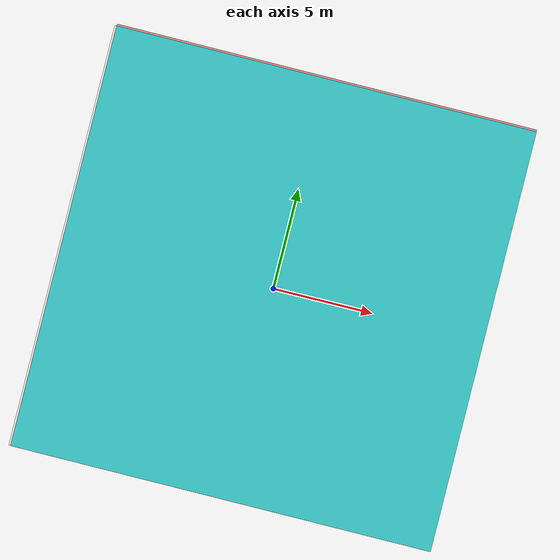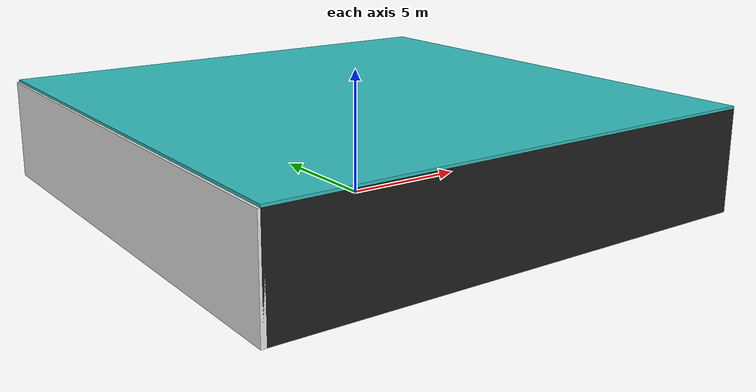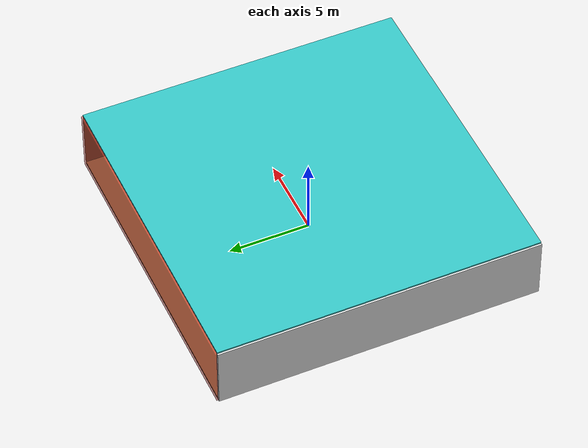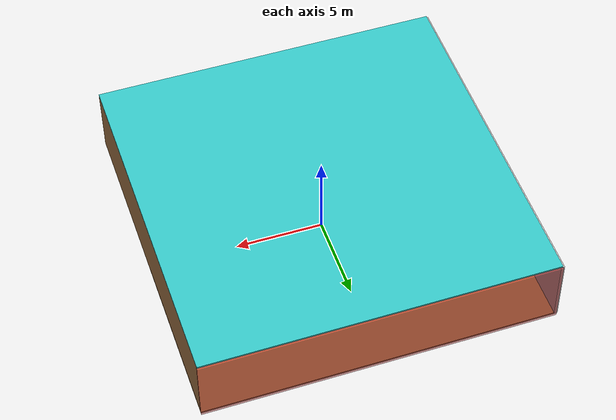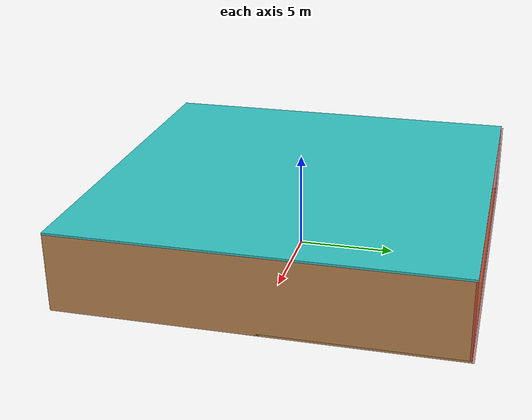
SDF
<sdf version="1.4">
 <world name="default">
  <physics type="ode">
   <max_step_size>0.001</max_step_size>
   <real_time_factor>1</real_time_factor>
   <real_time_update_rate>1000</real_time_update_rate>
   <gravity>0 0 -9.8</gravity>
  </physics>
  <scene><ambient>0.4 0.4 0.4 1</ambient><background>0.7 0.7 0.7 1</background><shadows>1</shadows></scene>
  <model name="Surrounding">
   <static>1</static>
   <link name="Ceiling">
    <collision name="Ceiling_Collision"><geometry><box><size>20 20 0.1</size></box></geometry></collision>
    <visual name="Ceiling_Visual">
     <geometry><box><size>20 20 0.1</size></box></geometry>
     <material>
      <script><uri>file://media/materials/scripts/gazebo.material</uri><name>Gazebo/TurquoiseGlow</name></script>
     </material>
    </visual>
    <pose>0 0 4.05 0 0 0</pose>
   </link>
   <link name="Wall_South">
    <collision name="Wall_South_Collision">
     <geometry><box><size>20 0 4</size></box></geometry>
     <pose>0 0 2 0 -0 0</pose>
    </collision>
    <visual name="Wall_South_Visual">
     <pose>0 0 2 0 -0 0</pose>
     <geometry><box><size>20 0 4</size></box></geometry>
     <material>
      <script><uri>file://media/materials/scripts/gazebo.material</uri><name>Gazebo/Black</name></script>
     </material>
    </visual>
    <velocity_decay><linear>0</linear><angular>0</angular></velocity_decay>
    <pose>0 -10 0 0 -0 0</pose>
   </link>
   <link name="Wall_East">
    <collision name="Wall_21_Collision">
     <geometry><box><size>20 0 4</size></box></geometry>
     <pose>0 0 2 0 -0 0</pose>
    </collision>
    <visual name="Wall_21_Visual">
     <pose>0 0 2 0 -0 0</pose>
     <geometry><box><size>20 0 4</size></box></geometry>
     <material>
      <script><uri>file://media/materials/scripts/gazebo.material</uri><name>Gazebo/WoodPallet</name></script>
     </material>
    </visual>
    <velocity_decay><linear>0</linear><angular>0</angular></velocity_decay>
    <pose>10 0 0 0 -0 1.5708</pose>
   </link>
   <link name="Wall_North">
    <collision name="Wall_22_Collision">
     <geometry><box><size>20 0.2 4</size></box></geometry>
     <pose>0 0 2 0 -0 0</pose>
    </collision>
    <visual name="Wall_22_Visual">
     <pose>0 0 2 0 -0 0</pose>
     <geometry><box><size>20 0.2 4</size></box></geometry>
     <material>
      <script><uri>file://media/materials/scripts/gazebo.material</uri><name>Gazebo/RedTransparent</name></script>
     </material>
    </visual>
    <velocity_decay><linear>0</linear><angular>0</angular></velocity_decay>
    <pose>0 10 0 0 -0 0</pose>
   </link>
   <link name="Wall_West">
    <collision name="Wall_23_Collision">
     <geometry><box><size>20 0.2 4</size></box></geometry>
     <pose>0 0 2 0 -0 0</pose>
    </collision>
    <visual name="Wall_23_Visual">
     <pose>0 0 2 0 -0 0</pose>
     <geometry><box><size>20 0.2 4</size></box></geometry>
     <material>
      <script><uri>file://media/materials/scripts/gazebo.material</uri><name>Gazebo/White</name></script>
     </material>
    </visual>
    <velocity_decay><linear>0</linear><angular>0</angular></velocity_decay>
    <pose>-10 0 0 0 0 -1.5708</pose>
   </link>
   <link name="Ground_link">
    <collision name="collision">
     <pose>0 0 .05 0 -0 0</pose>
     <geometry><box><size>20 20 0.1</size></box></geometry>
    </collision>
    <visual name="visual">
     <pose>0 0 .05 0 -0 0</pose>
     <geometry><box><size>20 20 0.1</size></box></geometry>
     <material>
      <script><uri>file://media/materials/scripts/gazebo.material</uri><name>Gazebo/WoodFloor</name></script>
     </material>
    </visual>
   </link>
   <static>1</static>
  </model>
  <spherical_coordinates>
   <surface_model>EARTH_WGS84</surface_model>
   <latitude_deg>0</latitude_deg>
   <longitude_deg>0</longitude_deg>
   <elevation>0</elevation>
   <heading_deg>0</heading_deg>
  </spherical_coordinates>
  <light name="lightball_0" type="diffuse">
   <diffuse>0.8 0.8 0.8 1</diffuse>
   <specular>0.2 0.2 0.2 1</specular>
   <attenuation>
    <range>100</range>
    <constant>0.7</constant>
    <linear>0.01</linear>
    <quadratic>0.001</quadratic>
   </attenuation>
   <direction>-0.5 0.1 -0.9</direction>
   <pose>-5.43687646239 -0.85216848805 1.17831326625 0 0 0</pose>
  </light>
  <light name="lightball_1" type="diffuse">
   <diffuse>0.8 0.8 0.8 1</diffuse>
   <specular>0.2 0.2 0.2 1</specular>
   <attenuation>
    <range>100</range>
    <constant>0.7</constant>
    <linear>0.01</linear>
    <quadratic>0.001</quadratic>
   </attenuation>
   <direction>-0.5 0.1 -0.9</direction>
   <pose>-8.61949921584 -7.37787854018 1.34231422245 0 0 0</pose>
  </light>
  <light name="lightball_2" type="diffuse">
   <diffuse>0.8 0.8 0.8 1</diffuse>
   <specular>0.2 0.2 0.2 1</specular>
   <attenuation>
    <range>100</range>
    <constant>0.7</constant>
    <linear>0.01</linear>
    <quadratic>0.001</quadratic>
   </attenuation>
   <direction>-0.5 0.1 -0.9</direction>
   <pose>4.8239149349 3.87974098903 1.40019649248 0 0 0</pose>
  </light>
  <light name="lightball_3" type="diffuse">
   <diffuse>0.8 0.8 0.8 1</diffuse>
   <specular>0.2 0.2 0.2 1</specular>
   <attenuation>
    <range>100</range>
    <constant>0.7</constant>
    <linear>0.01</linear>
    <quadratic>0.001</quadratic>
   </attenuation>
   <direction>-0.5 0.1 -0.9</direction>
   <pose>-9.49444489764 -7.69636036389 2.49262171722 0 0 0</pose>
  </light>
  <light name="lightball_4" type="diffuse">
   <diffuse>0.8 0.8 0.8 1</diffuse>
   <specular>0.2 0.2 0.2 1</specular>
   <attenuation>
    <range>100</range>
    <constant>0.7</constant>
    <linear>0.01</linear>
    <quadratic>0.001</quadratic>
   </attenuation>
   <direction>-0.5 0.1 -0.9</direction>
   <pose>3.3494909625 -2.85163933645 2.16940982243 0 0 0</pose>
  </light>
  <light name="lightball_5" type="diffuse">
   <diffuse>0.8 0.8 0.8 1</diffuse>
   <specular>0.2 0.2 0.2 1</specular>
   <attenuation>
    <range>100</range>
    <constant>0.7</constant>
    <linear>0.01</linear>
    <quadratic>0.001</quadratic>
   </attenuation>
   <direction>-0.5 0.1 -0.9</direction>
   <pose>-3.04840819894 2.48174367879 2.68531469837 0 0 0</pose>
  </light>
  <light name="lightball_6" type="diffuse">
   <diffuse>0.8 0.8 0.8 1</diffuse>
   <specular>0.2 0.2 0.2 1</specular>
   <attenuation>
    <range>100</range>
    <constant>0.7</constant>
    <linear>0.01</linear>
    <quadratic>0.001</quadratic>
   </attenuation>
   <direction>-0.5 0.1 -0.9</direction>
   <pose>5.21964302957 8.58242486687 2.84787535214 0 0 0</pose>
  </light>
  <light name="lightball_7" type="diffuse">
   <diffuse>0.8 0.8 0.8 1</diffuse>
   <specular>0.2 0.2 0.2 1</specular>
   <attenuation>
    <range>100</range>
    <constant>0.7</constant>
    <linear>0.01</linear>
    <quadratic>0.001</quadratic>
   </attenuation>
   <direction>-0.5 0.1 -0.9</direction>
   <pose>-8.75633845946 1.53069037883 1.66033756552 0 0 0</pose>
  </light>
  <light name="lightball_8" type="diffuse">
   <diffuse>0.8 0.8 0.8 1</diffuse>
   <specular>0.2 0.2 0.2 1</specular>
   <attenuation>
    <range>100</range>
    <constant>0.7</constant>
    <linear>0.01</linear>
    <quadratic>0.001</quadratic>
   </attenuation>
   <direction>-0.5 0.1 -0.9</direction>
   <pose>-1.62947522502 -8.75759279525 3.31223852604 0 0 0</pose>
  </light>
  <light name="lightball_9" type="diffuse">
   <diffuse>0.8 0.8 0.8 1</diffuse>
   <specular>0.2 0.2 0.2 1</specular>
   <attenuation>
    <range>100</range>
    <constant>0.7</constant>
    <linear>0.01</linear>
    <quadratic>0.001</quadratic>
   </attenuation>
   <direction>-0.5 0.1 -0.9</direction>
   <pose>-2.8030713308 -0.511713109219 1.85315053546 0 0 0</pose>
  </light>
  <include>
   <uri>model://construction_cone</uri>
   <pose>-1.19614694715 7.04243072316 0 0 0 2.40823306523</pose>
  </include>
  <include><uri>model://cabinet</uri><pose>1.93508270247 2.18316508601 0 0 0 2.96595686825</pose></include>
  <include>
   <uri>model://construction_cone</uri>
   <pose>5.0032725676 -4.84967872255 0 0 0 2.51023006229</pose>
  </include>
  <include>
   <uri>model://construction_cone</uri>
   <pose>3.77019784535 4.62828340261 0 0 0 0.560912838561</pose>
  </include>
 </world>
</sdf>

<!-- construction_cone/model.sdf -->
<sdf version="1.5">
  <model name="Construction Cone">
    <link name="link">
      <collision name="collision">
        <geometry>
          <mesh>
            <scale>10 10 10</scale>
            <uri>file://isr-testbed/construction_cone/meshes/construction_cone.dae</uri>
          </mesh>
        </geometry>
      </collision>
      <visual name="visual">
        <geometry>
          <mesh>
            <scale>10 10 10</scale>
            <uri>file://isr-testbed/construction_cone/meshes/construction_cone.dae</uri>
          </mesh>
        </geometry>
      </visual>
    </link>
  </model>
</sdf>

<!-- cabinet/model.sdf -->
<sdf version="1.5">
  <model name="cabinet">
    <static>true</static>
    <link name="cabinet_bottom_plate">
      <inertial>
        <pose>0 0 -1 0 0 0</pose>
        <inertia>
          <ixx>2.050000</ixx>
          <ixy>0</ixy>
          <ixz>0</ixz>
          <iyy>2.050000</iyy>
          <iyz>0</iyz>
          <izz>2.050000</izz>
        </inertia>
        <mass>25.000000</mass>
      </inertial>
      <collision name="cabinet_bottom_plate_geom">
        <pose>0 0 0.010000 0 0 0</pose>
        <geometry>
          <box>
            <size>0.450000 0.450000 0.020000</size>
          </box>
        </geometry>
      </collision>
      <visual name="cabinet_bottom_plate_geom_visual">
        <pose>0 0 0.010000 0 0 0</pose>
        <geometry>
          <box>
            <size>0.450000 0.450000 0.020000</size>
          </box>
        </geometry>
        <material>
          <script>
            <uri>model://media/materials/scripts/gazebo.material</uri>
            <name>Gazebo/Wood</name>
          </script>
        </material>
      </visual>
      <collision name="cabinet_bottom_plate_geom_cabinet_back_plate">
        <pose>0.235000 0 0.510000 0 0 0</pose>
        <geometry>
          <box>
            <size>0.020000 0.450000 1.020000</size>
          </box>
        </geometry>
      </collision>
      <visual name="cabinet_bottom_plate_geom_cabinet_back_plate_visual">
        <pose>0.235000 0 0.510000 0 0 0</pose>
        <geometry>
          <box>
            <size>0.020000 0.450000 1.020000</size>
          </box>
        </geometry>
        <material>
          <script>
            <uri>model://media/materials/scripts/gazebo.material</uri>
            <name>Gazebo/Wood</name>
          </script>
        </material>
      </visual>
      <collision name="cabinet_bottom_plate_geom_cabinet_left_plate">
        <pose>0 0.235000 0.510000 0 0 0</pose>
        <geometry>
          <box>
            <size>0.450000 0.020000 1.020000</size>
          </box>
        </geometry>
      </collision>
      <visual name="cabinet_bottom_plate_geom_cabinet_left_plate_visual">
        <pose>0 0.235000 0.510000 0 0 0</pose>
        <geometry>
          <box>
            <size>0.450000 0.020000 1.020000</size>
          </box>
        </geometry>
        <material>
          <script>
            <uri>model://media/materials/scripts/gazebo.material</uri>
            <name>Gazebo/Wood</name>
          </script>
        </material>
      </visual>
      <collision name="cabinet_bottom_plate_geom_cabinet_middle_plate">
        <pose>0 0 0.510000 0 0 0</pose>
        <geometry>
          <box>
            <size>0.450000 0.450000 0.020000</size>
          </box>
        </geometry>
      </collision>
      <visual name="cabinet_bottom_plate_geom_cabinet_middle_plate_visual">
        <pose>0 0 0.510000 0 0 0</pose>
        <geometry>
          <box>
            <size>0.450000 0.450000 0.020000</size>
          </box>
        </geometry>
        <material>
          <script>
            <uri>model://media/materials/scripts/gazebo.material</uri>
            <name>Gazebo/Wood</name>
          </script>
        </material>
      </visual>
      <collision name="cabinet_bottom_plate_geom_cabinet_right_plate">
        <pose>0 -0.235000 0.510000 0 0 0</pose>
        <geometry>
          <box>
            <size>0.450000 0.020000 1.020000</size>
          </box>
        </geometry>
      </collision>
      <visual name="cabinet_bottom_plate_geom_cabinet_right_plate_visual">
        <pose>0 -0.235000 0.510000 0 0 0</pose>
        <geometry>
          <box>
            <size>0.450000 0.020000 1.020000</size>
          </box>
        </geometry>
        <material>
          <script>
            <uri>model://media/materials/scripts/gazebo.material</uri>
            <name>Gazebo/Wood</name>
          </script>
        </material>
      </visual>
      <collision name="cabinet_bottom_plate_geom_cabinet_top_plate">
        <pose>0 0 1.010000 0 0 0</pose>
        <geometry>
          <box>
            <size>0.450000 0.450000 0.020000</size>
          </box>
        </geometry>
      </collision>
      <visual name="cabinet_bottom_plate_geom_cabinet_top_plate_visual">
        <pose>0 0 1.010000 0 0 0</pose>
        <geometry>
          <box>
            <size>0.450000 0.450000 0.020000</size>
          </box>
        </geometry>
        <material>
          <script>
            <uri>model://media/materials/scripts/gazebo.material</uri>
            <name>Gazebo/Wood</name>
          </script>
        </material>
      </visual>
    </link>
  </model>
</sdf>
